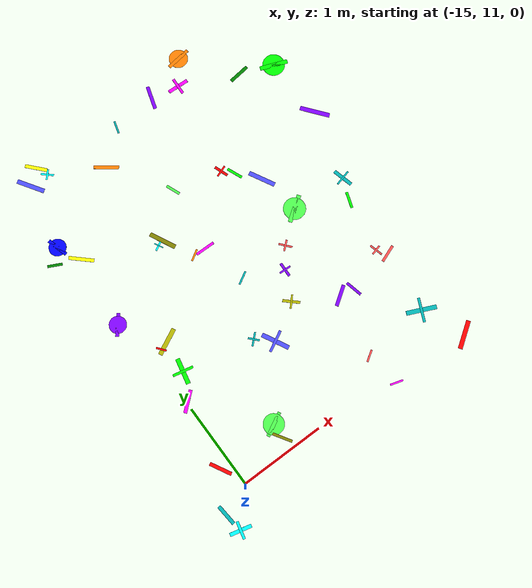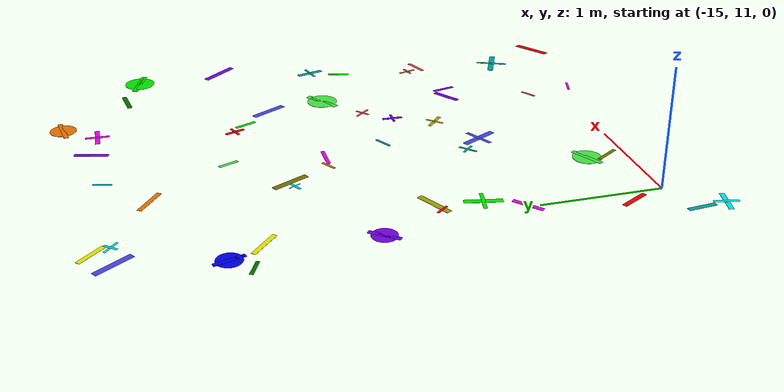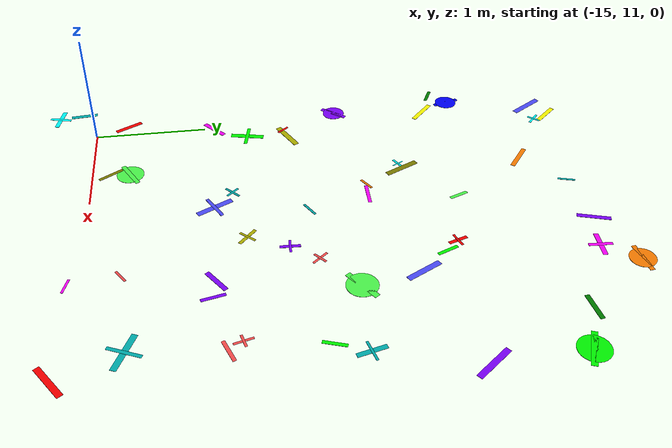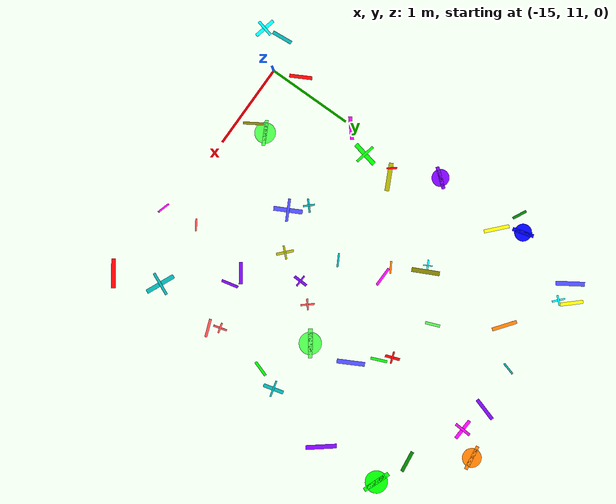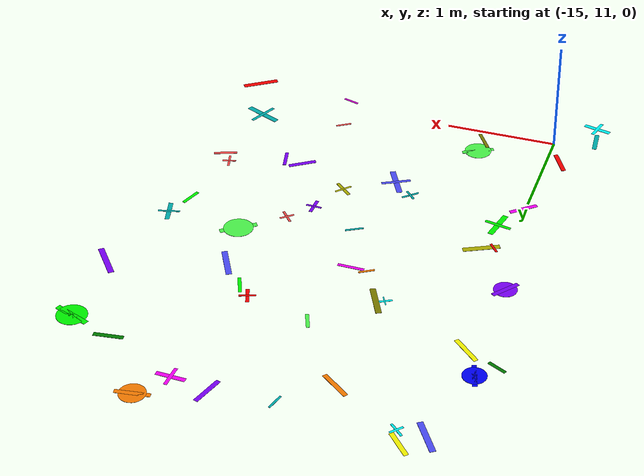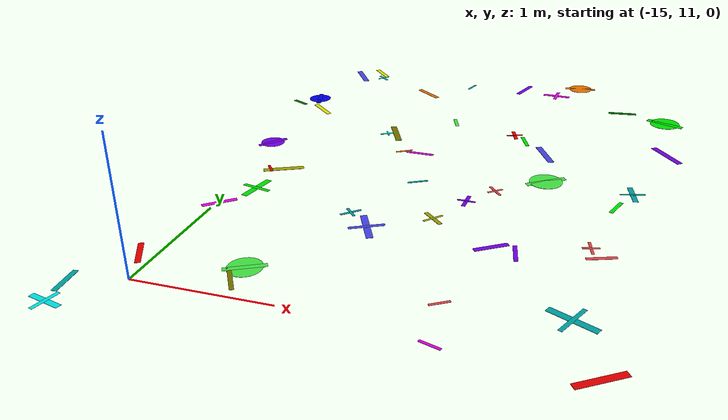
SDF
<sdf version="1.6">
 <world name="default">
  <model name="letter_J_78">
   <static>true</static>
   <pose>-15.36 10.86 0.010 0 0 4.804</pose>
   <link name="link">
    <visual name="visual">
     <geometry><box><size>0.24 0.04 0.002</size></box></geometry>
     <material>
      <ambient>0.0 0.7 0.7 1</ambient>
      <diffuse>0.0 0.7 0.7 1</diffuse>
      <specular>0.1 0.1 0.1 1</specular>
     </material>
    </visual>
   </link>
  </model>
  <model name="letter_L_79">
   <static>true</static>
   <pose>-15.33 10.64 0.009 0 0 6.050</pose>
   <link name="link">
    <visual name="visual">
     <geometry><box><size>0.25 0.04 0.002</size></box></geometry>
     <material>
      <ambient>0.0 1.0 1.0 1</ambient>
      <diffuse>0.0 1.0 1.0 1</diffuse>
      <specular>0.1 0.1 0.1 1</specular>
     </material>
    </visual>
    <visual name="visual2">
     <pose>0 0 0.001 0 0 1.57</pose>
     <geometry><box><size>0.20 0.03 0.001</size></box></geometry>
     <material><ambient>0.0 1.0 1.0 1</ambient><diffuse>0.0 1.0 1.0 1</diffuse></material>
    </visual>
   </link>
  </model>
  <model name="letter_K_80">
   <static>true</static>
   <pose>-15.12 11.29 0.006 0 0 5.213</pose>
   <link name="link">
    <visual name="visual">
     <geometry><box><size>0.26 0.04 0.002</size></box></geometry>
     <material>
      <ambient>1.0 0.0 0.0 1</ambient>
      <diffuse>1.0 0.0 0.0 1</diffuse>
      <specular>0.1 0.1 0.1 1</specular>
     </material>
    </visual>
   </link>
  </model>
  <model name="letter_H_81">
   <static>true</static>
   <pose>-14.83 12.39 0.005 0 0 4.503</pose>
   <link name="link">
    <visual name="visual">
     <geometry><box><size>0.30 0.05 0.002</size></box></geometry>
     <material>
      <ambient>0.0 1.0 0.0 1</ambient>
      <diffuse>0.0 1.0 0.0 1</diffuse>
      <specular>0.1 0.1 0.1 1</specular>
     </material>
    </visual>
    <visual name="visual2">
     <pose>0 0 0.001 0 0 1.57</pose>
     <geometry><box><size>0.24 0.03 0.001</size></box></geometry>
     <material><ambient>0.0 1.0 0.0 1</ambient><diffuse>0.0 1.0 0.0 1</diffuse></material>
    </visual>
   </link>
  </model>
  <model name="letter_W_82">
   <static>true</static>
   <pose>-14.98 12.09 0.005 0 0 3.850</pose>
   <link name="link">
    <visual name="visual">
     <geometry><box><size>0.26 0.04 0.002</size></box></geometry>
     <material>
      <ambient>1.0 0.0 1.0 1</ambient>
      <diffuse>1.0 0.0 1.0 1</diffuse>
      <specular>0.1 0.1 0.1 1</specular>
     </material>
    </visual>
   </link>
  </model>
  <model name="letter_Q_83">
   <static>true</static>
   <pose>-15.11 13.24 0.003 0 0 4.041</pose>
   <link name="link">
    <visual name="visual">
     <geometry><box><size>0.26 0.04 0.002</size></box></geometry>
     <material>
      <ambient>0.5 0.0 1.0 1</ambient>
      <diffuse>0.5 0.0 1.0 1</diffuse>
      <specular>0.1 0.1 0.1 1</specular>
     </material>
    </visual>
    <visual name="visual2">
     <geometry><cylinder><radius>0.10</radius><length>0.002</length></cylinder></geometry>
     <material><ambient>0.5 0.0 1.0 1</ambient><diffuse>0.5 0.0 1.0 1</diffuse></material>
    </visual>
   </link>
  </model>
  <model name="letter_X_84">
   <static>true</static>
   <pose>-14.88 12.73 0.011 0 0 5.380</pose>
   <link name="link">
    <visual name="visual">
     <geometry><box><size>0.12 0.02 0.002</size></box></geometry>
     <material>
      <ambient>1.0 0.0 0.0 1</ambient>
      <diffuse>1.0 0.0 0.0 1</diffuse>
      <specular>0.1 0.1 0.1 1</specular>
     </material>
    </visual>
   </link>
  </model>
  <model name="letter_V_85">
   <static>true</static>
   <pose>-14.78 12.76 0.007 0 0 3.602</pose>
   <link name="link">
    <visual name="visual">
     <geometry><box><size>0.32 0.05 0.002</size></box></geometry>
     <material>
      <ambient>0.7 0.7 0.0 1</ambient>
      <diffuse>0.7 0.7 0.0 1</diffuse>
      <specular>0.1 0.1 0.1 1</specular>
     </material>
    </visual>
   </link>
  </model>
  <model name="letter_M_86">
   <static>true</static>
   <pose>-15.01 14.09 0.009 0 0 5.541</pose>
   <link name="link">
    <visual name="visual">
     <geometry><box><size>0.29 0.04 0.002</size></box></geometry>
     <material>
      <ambient>1.0 1.0 0.0 1</ambient>
      <diffuse>1.0 1.0 0.0 1</diffuse>
      <specular>0.1 0.1 0.1 1</specular>
     </material>
    </visual>
   </link>
  </model>
  <model name="letter_O_87">
   <static>true</static>
   <pose>-15.15 14.36 0.007 0 0 1.856</pose>
   <link name="link">
    <visual name="visual">
     <geometry><box><size>0.25 0.04 0.002</size></box></geometry>
     <material>
      <ambient>0.0 0.0 1.0 1</ambient>
      <diffuse>0.0 0.0 1.0 1</diffuse>
      <specular>0.1 0.1 0.1 1</specular>
     </material>
    </visual>
    <visual name="visual2">
     <geometry><cylinder><radius>0.10</radius><length>0.002</length></cylinder></geometry>
     <material><ambient>0.0 0.0 1.0 1</ambient><diffuse>0.0 0.0 1.0 1</diffuse></material>
    </visual>
   </link>
  </model>
  <model name="letter_B_88">
   <static>true</static>
   <pose>-15.29 14.21 0.005 0 0 2.685</pose>
   <link name="link">
    <visual name="visual">
     <geometry><box><size>0.17 0.03 0.002</size></box></geometry>
     <material>
      <ambient>0.0 0.5 0.0 1</ambient>
      <diffuse>0.0 0.5 0.0 1</diffuse>
      <specular>0.1 0.1 0.1 1</specular>
     </material>
    </visual>
   </link>
  </model>
  <model name="letter_Y_89">
   <static>true</static>
   <pose>-14.99 15.13 0.004 0 0 2.151</pose>
   <link name="link">
    <visual name="visual">
     <geometry><box><size>0.33 0.05 0.002</size></box></geometry>
     <material>
      <ambient>0.3 0.3 1.0 1</ambient>
      <diffuse>0.3 0.3 1.0 1</diffuse>
      <specular>0.1 0.1 0.1 1</specular>
     </material>
    </visual>
   </link>
  </model>
  <model name="letter_S_90">
   <static>true</static>
   <pose>-14.82 15.27 0.006 0 0 2.311</pose>
   <link name="link">
    <visual name="visual">
     <geometry><box><size>0.26 0.04 0.002</size></box></geometry>
     <material>
      <ambient>1.0 1.0 0.0 1</ambient>
      <diffuse>1.0 1.0 0.0 1</diffuse>
      <specular>0.1 0.1 0.1 1</specular>
     </material>
    </visual>
   </link>
  </model>
  <model name="letter_I_91">
   <static>true</static>
   <pose>-14.76 15.13 0.007 0 0 5.548</pose>
   <link name="link">
    <visual name="visual">
     <geometry><box><size>0.15 0.02 0.002</size></box></geometry>
     <material>
      <ambient>0.0 1.0 1.0 1</ambient>
      <diffuse>0.0 1.0 1.0 1</diffuse>
      <specular>0.1 0.1 0.1 1</specular>
     </material>
    </visual>
    <visual name="visual2">
     <pose>0 0 0.001 0 0 1.57</pose>
     <geometry><box><size>0.12 0.02 0.001</size></box></geometry>
     <material><ambient>0.0 1.0 1.0 1</ambient><diffuse>0.0 1.0 1.0 1</diffuse></material>
    </visual>
   </link>
  </model>
  <model name="letter_O_156">
   <static>true</static>
   <pose>-14.37 11.33 0.005 0 0 3.629</pose>
   <link name="link">
    <visual name="visual">
     <geometry><box><size>0.29 0.04 0.002</size></box></geometry>
     <material>
      <ambient>0.3 1.0 0.3 1</ambient>
      <diffuse>0.3 1.0 0.3 1</diffuse>
      <specular>0.1 0.1 0.1 1</specular>
     </material>
    </visual>
    <visual name="visual2">
     <geometry><cylinder><radius>0.12</radius><length>0.002</length></cylinder></geometry>
     <material><ambient>0.3 1.0 0.3 1</ambient><diffuse>0.3 1.0 0.3 1</diffuse></material>
    </visual>
   </link>
  </model>
  <model name="letter_R_157">
   <static>true</static>
   <pose>-14.38 11.16 0.011 0 0 2.137</pose>
   <link name="link">
    <visual name="visual">
     <geometry><box><size>0.23 0.03 0.002</size></box></geometry>
     <material>
      <ambient>0.5 0.5 0.0 1</ambient>
      <diffuse>0.5 0.5 0.0 1</diffuse>
      <specular>0.1 0.1 0.1 1</specular>
     </material>
    </visual>
   </link>
  </model>
  <model name="letter_F_158">
   <static>true</static>
   <pose>-13.99 12.21 0.013 0 0 0.749</pose>
   <link name="link">
    <visual name="visual">
     <geometry><box><size>0.16 0.02 0.002</size></box></geometry>
     <material>
      <ambient>0.0 0.7 0.7 1</ambient>
      <diffuse>0.0 0.7 0.7 1</diffuse>
      <specular>0.1 0.1 0.1 1</specular>
     </material>
    </visual>
    <visual name="visual2">
     <pose>0 0 0.001 0 0 1.57</pose>
     <geometry><box><size>0.13 0.02 0.001</size></box></geometry>
     <material><ambient>0.0 0.7 0.7 1</ambient><diffuse>0.0 0.7 0.7 1</diffuse></material>
    </visual>
   </link>
  </model>
  <model name="letter_E_159">
   <static>true</static>
   <pose>-13.81 12.05 0.010 0 0 2.056</pose>
   <link name="link">
    <visual name="visual">
     <geometry><box><size>0.33 0.05 0.002</size></box></geometry>
     <material>
      <ambient>0.3 0.3 1.0 1</ambient>
      <diffuse>0.3 0.3 1.0 1</diffuse>
      <specular>0.1 0.1 0.1 1</specular>
     </material>
    </visual>
    <visual name="visual2">
     <pose>0 0 0.001 0 0 1.57</pose>
     <geometry><box><size>0.26 0.03 0.001</size></box></geometry>
     <material><ambient>0.3 0.3 1.0 1</ambient><diffuse>0.3 0.3 1.0 1</diffuse></material>
    </visual>
   </link>
  </model>
  <model name="letter_D_160">
   <static>true</static>
   <pose>-13.82 13.36 0.011 0 0 6.271</pose>
   <link name="link">
    <visual name="visual">
     <geometry><box><size>0.23 0.03 0.002</size></box></geometry>
     <material>
      <ambient>1.0 0.0 1.0 1</ambient>
      <diffuse>1.0 0.0 1.0 1</diffuse>
      <specular>0.1 0.1 0.1 1</specular>
     </material>
    </visual>
   </link>
  </model>
  <model name="letter_B_161">
   <static>true</static>
   <pose>-13.68 12.84 0.009 0 0 0.513</pose>
   <link name="link">
    <visual name="visual">
     <geometry><box><size>0.16 0.02 0.002</size></box></geometry>
     <material>
      <ambient>0.0 0.7 0.7 1</ambient>
      <diffuse>0.0 0.7 0.7 1</diffuse>
      <specular>0.1 0.1 0.1 1</specular>
     </material>
    </visual>
   </link>
  </model>
  <model name="letter_D_162">
   <static>true</static>
   <pose>-13.96 13.37 0.010 0 0 3.690</pose>
   <link name="link">
    <visual name="visual">
     <geometry><box><size>0.14 0.02 0.002</size></box></geometry>
     <material>
      <ambient>1.0 0.5 0.0 1</ambient>
      <diffuse>1.0 0.5 0.0 1</diffuse>
      <specular>0.1 0.1 0.1 1</specular>
     </material>
    </visual>
   </link>
  </model>
  <model name="letter_V_163">
   <static>true</static>
   <pose>-14.15 13.72 0.008 0 0 5.175</pose>
   <link name="link">
    <visual name="visual">
     <geometry><box><size>0.32 0.05 0.002</size></box></geometry>
     <material>
      <ambient>0.5 0.5 0.0 1</ambient>
      <diffuse>0.5 0.5 0.0 1</diffuse>
      <specular>0.1 0.1 0.1 1</specular>
     </material>
    </visual>
   </link>
  </model>
  <model name="letter_T_164">
   <static>true</static>
   <pose>-14.22 13.70 0.007 0 0 3.638</pose>
   <link name="link">
    <visual name="visual">
     <geometry><box><size>0.13 0.02 0.002</size></box></geometry>
     <material>
      <ambient>0.0 1.0 1.0 1</ambient>
      <diffuse>0.0 1.0 1.0 1</diffuse>
      <specular>0.1 0.1 0.1 1</specular>
     </material>
    </visual>
    <visual name="visual2">
     <pose>0 0 0.001 0 0 1.57</pose>
     <geometry><box><size>0.11 0.01 0.001</size></box></geometry>
     <material><ambient>0.0 1.0 1.0 1</ambient><diffuse>0.0 1.0 1.0 1</diffuse></material>
    </visual>
   </link>
  </model>
  <model name="letter_Z_165">
   <static>true</static>
   <pose>-13.71 14.13 0.005 0 0 1.953</pose>
   <link name="link">
    <visual name="visual">
     <geometry><box><size>0.17 0.03 0.002</size></box></geometry>
     <material>
      <ambient>0.3 1.0 0.3 1</ambient>
      <diffuse>0.3 1.0 0.3 1</diffuse>
      <specular>0.1 0.1 0.1 1</specular>
     </material>
    </visual>
   </link>
  </model>
  <model name="letter_P_166">
   <static>true</static>
   <pose>-14.17 14.80 0.007 0 0 5.635</pose>
   <link name="link">
    <visual name="visual">
     <geometry><box><size>0.29 0.04 0.002</size></box></geometry>
     <material>
      <ambient>1.0 0.5 0.0 1</ambient>
      <diffuse>1.0 0.5 0.0 1</diffuse>
      <specular>0.1 0.1 0.1 1</specular>
     </material>
    </visual>
   </link>
  </model>
  <model name="letter_P_167">
   <static>true</static>
   <pose>-13.80 15.12 0.006 0 0 1.297</pose>
   <link name="link">
    <visual name="visual">
     <geometry><box><size>0.15 0.02 0.002</size></box></geometry>
     <material>
      <ambient>0.0 0.7 0.7 1</ambient>
      <diffuse>0.0 0.7 0.7 1</diffuse>
      <specular>0.1 0.1 0.1 1</specular>
     </material>
    </visual>
   </link>
  </model>
  <model name="letter_K_230">
   <static>true</static>
   <pose>-13.01 10.89 0.011 0 0 5.993</pose>
   <link name="link">
    <visual name="visual">
     <geometry><box><size>0.15 0.02 0.002</size></box></geometry>
     <material>
      <ambient>1.0 0.0 1.0 1</ambient>
      <diffuse>1.0 0.0 1.0 1</diffuse>
      <specular>0.1 0.1 0.1 1</specular>
     </material>
    </visual>
   </link>
  </model>
  <model name="letter_M_231">
   <static>true</static>
   <pose>-13.07 11.30 0.007 0 0 3.717</pose>
   <link name="link">
    <visual name="visual">
     <geometry><box><size>0.14 0.02 0.002</size></box></geometry>
     <material>
      <ambient>1.0 0.3 0.3 1</ambient>
      <diffuse>1.0 0.3 0.3 1</diffuse>
      <specular>0.1 0.1 0.1 1</specular>
     </material>
    </visual>
   </link>
  </model>
  <model name="letter_S_232">
   <static>true</static>
   <pose>-12.92 12.03 0.006 0 0 0.599</pose>
   <link name="link">
    <visual name="visual">
     <geometry><box><size>0.25 0.04 0.002</size></box></geometry>
     <material>
      <ambient>0.5 0.0 1.0 1</ambient>
      <diffuse>0.5 0.0 1.0 1</diffuse>
      <specular>0.1 0.1 0.1 1</specular>
     </material>
    </visual>
   </link>
  </model>
  <model name="letter_V_233">
   <static>true</static>
   <pose>-12.75 12.00 0.004 0 0 1.797</pose>
   <link name="link">
    <visual name="visual">
     <geometry><box><size>0.20 0.03 0.002</size></box></geometry>
     <material>
      <ambient>0.5 0.0 1.0 1</ambient>
      <diffuse>0.5 0.0 1.0 1</diffuse>
      <specular>0.1 0.1 0.1 1</specular>
     </material>
    </visual>
   </link>
  </model>
  <model name="letter_F_234">
   <static>true</static>
   <pose>-13.40 12.30 0.009 0 0 5.539</pose>
   <link name="link">
    <visual name="visual">
     <geometry><box><size>0.20 0.03 0.002</size></box></geometry>
     <material>
      <ambient>0.7 0.7 0.0 1</ambient>
      <diffuse>0.7 0.7 0.0 1</diffuse>
      <specular>0.1 0.1 0.1 1</specular>
     </material>
    </visual>
    <visual name="visual2">
     <pose>0 0 0.001 0 0 1.57</pose>
     <geometry><box><size>0.16 0.02 0.001</size></box></geometry>
     <material><ambient>0.7 0.7 0.0 1</ambient><diffuse>0.7 0.7 0.0 1</diffuse></material>
    </visual>
   </link>
  </model>
  <model name="letter_I_235">
   <static>true</static>
   <pose>-13.24 12.63 0.009 0 0 1.536</pose>
   <link name="link">
    <visual name="visual">
     <geometry><box><size>0.17 0.03 0.002</size></box></geometry>
     <material>
      <ambient>0.5 0.0 1.0 1</ambient>
      <diffuse>0.5 0.0 1.0 1</diffuse>
      <specular>0.1 0.1 0.1 1</specular>
     </material>
    </visual>
    <visual name="visual2">
     <pose>0 0 0.001 0 0 1.57</pose>
     <geometry><box><size>0.14 0.02 0.001</size></box></geometry>
     <material><ambient>0.5 0.0 1.0 1</ambient><diffuse>0.5 0.0 1.0 1</diffuse></material>
    </visual>
   </link>
  </model>
  <model name="letter_C_236">
   <static>true</static>
   <pose>-12.73 13.13 0.008 0 0 3.757</pose>
   <link name="link">
    <visual name="visual">
     <geometry><box><size>0.33 0.05 0.002</size></box></geometry>
     <material>
      <ambient>0.3 1.0 0.3 1</ambient>
      <diffuse>0.3 1.0 0.3 1</diffuse>
      <specular>0.1 0.1 0.1 1</specular>
     </material>
    </visual>
    <visual name="visual2">
     <geometry><cylinder><radius>0.13</radius><length>0.002</length></cylinder></geometry>
     <material><ambient>0.3 1.0 0.3 1</ambient><diffuse>0.3 1.0 0.3 1</diffuse></material>
    </visual>
   </link>
  </model>
  <model name="letter_L_237">
   <static>true</static>
   <pose>-13.07 12.85 0.011 0 0 5.417</pose>
   <link name="link">
    <visual name="visual">
     <geometry><box><size>0.16 0.02 0.002</size></box></geometry>
     <material>
      <ambient>1.0 0.3 0.3 1</ambient>
      <diffuse>1.0 0.3 0.3 1</diffuse>
      <specular>0.1 0.1 0.1 1</specular>
     </material>
    </visual>
    <visual name="visual2">
     <pose>0 0 0.001 0 0 1.57</pose>
     <geometry><box><size>0.13 0.02 0.001</size></box></geometry>
     <material><ambient>1.0 0.3 0.3 1</ambient><diffuse>1.0 0.3 0.3 1</diffuse></material>
    </visual>
   </link>
  </model>
  <model name="letter_H_238">
   <static>true</static>
   <pose>-13.14 13.98 0.007 0 0 1.916</pose>
   <link name="link">
    <visual name="visual">
     <geometry><box><size>0.17 0.03 0.002</size></box></geometry>
     <material>
      <ambient>1.0 0.0 0.0 1</ambient>
      <diffuse>1.0 0.0 0.0 1</diffuse>
      <specular>0.1 0.1 0.1 1</specular>
     </material>
    </visual>
    <visual name="visual2">
     <pose>0 0 0.001 0 0 1.57</pose>
     <geometry><box><size>0.14 0.02 0.001</size></box></geometry>
     <material><ambient>1.0 0.0 0.0 1</ambient><diffuse>1.0 0.0 0.0 1</diffuse></material>
    </visual>
   </link>
  </model>
  <model name="letter_X_239">
   <static>true</static>
   <pose>-13.03 13.87 0.008 0 0 5.110</pose>
   <link name="link">
    <visual name="visual">
     <geometry><box><size>0.19 0.03 0.002</size></box></geometry>
     <material>
      <ambient>0.0 1.0 0.0 1</ambient>
      <diffuse>0.0 1.0 0.0 1</diffuse>
      <specular>0.1 0.1 0.1 1</specular>
     </material>
    </visual>
   </link>
  </model>
  <model name="letter_X_240">
   <static>true</static>
   <pose>-12.82 13.63 0.013 0 0 5.207</pose>
   <link name="link">
    <visual name="visual">
     <geometry><box><size>0.32 0.05 0.002</size></box></geometry>
     <material>
      <ambient>0.3 0.3 1.0 1</ambient>
      <diffuse>0.3 0.3 1.0 1</diffuse>
      <specular>0.1 0.1 0.1 1</specular>
     </material>
    </visual>
   </link>
  </model>
  <model name="letter_O_241">
   <static>true</static>
   <pose>-12.74 15.37 0.009 0 0 0.138</pose>
   <link name="link">
    <visual name="visual">
     <geometry><box><size>0.29 0.04 0.002</size></box></geometry>
     <material>
      <ambient>1.0 0.5 0.0 1</ambient>
      <diffuse>1.0 0.5 0.0 1</diffuse>
      <specular>0.1 0.1 0.1 1</specular>
     </material>
    </visual>
    <visual name="visual2">
     <geometry><cylinder><radius>0.11</radius><length>0.002</length></cylinder></geometry>
     <material><ambient>1.0 0.5 0.0 1</ambient><diffuse>1.0 0.5 0.0 1</diffuse></material>
    </visual>
   </link>
  </model>
  <model name="letter_W_242">
   <static>true</static>
   <pose>-13.27 15.17 0.011 0 0 1.272</pose>
   <link name="link">
    <visual name="visual">
     <geometry><box><size>0.28 0.04 0.002</size></box></geometry>
     <material>
      <ambient>0.5 0.0 1.0 1</ambient>
      <diffuse>0.5 0.0 1.0 1</diffuse>
      <specular>0.1 0.1 0.1 1</specular>
     </material>
    </visual>
   </link>
  </model>
  <model name="letter_E_243">
   <static>true</static>
   <pose>-12.94 15.10 0.007 0 0 6.239</pose>
   <link name="link">
    <visual name="visual">
     <geometry><box><size>0.25 0.04 0.002</size></box></geometry>
     <material>
      <ambient>1.0 0.0 1.0 1</ambient>
      <diffuse>1.0 0.0 1.0 1</diffuse>
      <specular>0.1 0.1 0.1 1</specular>
     </material>
    </visual>
    <visual name="visual2">
     <pose>0 0 0.001 0 0 1.57</pose>
     <geometry><box><size>0.20 0.03 0.001</size></box></geometry>
     <material><ambient>1.0 0.0 1.0 1</ambient><diffuse>1.0 0.0 1.0 1</diffuse></material>
    </visual>
   </link>
  </model>
  <model name="letter_H_306">
   <static>true</static>
   <pose>-12.29 11.36 0.004 0 0 5.863</pose>
   <link name="link">
    <visual name="visual">
     <geometry><box><size>0.35 0.05 0.002</size></box></geometry>
     <material>
      <ambient>0.0 0.7 0.7 1</ambient>
      <diffuse>0.0 0.7 0.7 1</diffuse>
      <specular>0.1 0.1 0.1 1</specular>
     </material>
    </visual>
    <visual name="visual2">
     <pose>0 0 0.001 0 0 1.57</pose>
     <geometry><box><size>0.28 0.03 0.001</size></box></geometry>
     <material><ambient>0.0 0.7 0.7 1</ambient><diffuse>0.0 0.7 0.7 1</diffuse></material>
    </visual>
   </link>
  </model>
  <model name="letter_P_307">
   <static>true</static>
   <pose>-12.08 10.86 0.013 0 0 3.751</pose>
   <link name="link">
    <visual name="visual">
     <geometry><box><size>0.33 0.05 0.002</size></box></geometry>
     <material>
      <ambient>1.0 0.0 0.0 1</ambient>
      <diffuse>1.0 0.0 0.0 1</diffuse>
      <specular>0.1 0.1 0.1 1</specular>
     </material>
    </visual>
   </link>
  </model>
  <model name="letter_W_309">
   <static>true</static>
   <pose>-12.20 12.09 0.011 0 0 3.505</pose>
   <link name="link">
    <visual name="visual">
     <geometry><box><size>0.21 0.03 0.002</size></box></geometry>
     <material>
      <ambient>1.0 0.3 0.3 1</ambient>
      <diffuse>1.0 0.3 0.3 1</diffuse>
      <specular>0.1 0.1 0.1 1</specular>
     </material>
    </visual>
   </link>
  </model>
  <model name="letter_I_310">
   <static>true</static>
   <pose>-12.28 12.20 0.011 0 0 4.980</pose>
   <link name="link">
    <visual name="visual">
     <geometry><box><size>0.16 0.02 0.002</size></box></geometry>
     <material>
      <ambient>1.0 0.3 0.3 1</ambient>
      <diffuse>1.0 0.3 0.3 1</diffuse>
      <specular>0.1 0.1 0.1 1</specular>
     </material>
    </visual>
    <visual name="visual2">
     <pose>0 0 0.001 0 0 1.57</pose>
     <geometry><box><size>0.12 0.02 0.001</size></box></geometry>
     <material><ambient>1.0 0.3 0.3 1</ambient><diffuse>1.0 0.3 0.3 1</diffuse></material>
    </visual>
   </link>
  </model>
  <model name="letter_L_311">
   <static>true</static>
   <pose>-12.07 13.09 0.009 0 0 1.824</pose>
   <link name="link">
    <visual name="visual">
     <geometry><box><size>0.24 0.04 0.002</size></box></geometry>
     <material>
      <ambient>0.0 0.7 0.7 1</ambient>
      <diffuse>0.0 0.7 0.7 1</diffuse>
      <specular>0.1 0.1 0.1 1</specular>
     </material>
    </visual>
    <visual name="visual2">
     <pose>0 0 0.001 0 0 1.57</pose>
     <geometry><box><size>0.19 0.02 0.001</size></box></geometry>
     <material><ambient>0.0 0.7 0.7 1</ambient><diffuse>0.0 0.7 0.7 1</diffuse></material>
    </visual>
   </link>
  </model>
  <model name="letter_M_312">
   <static>true</static>
   <pose>-12.17 12.84 0.010 0 0 4.387</pose>
   <link name="link">
    <visual name="visual">
     <geometry><box><size>0.19 0.03 0.002</size></box></geometry>
     <material>
      <ambient>0.0 1.0 0.0 1</ambient>
      <diffuse>0.0 1.0 0.0 1</diffuse>
      <specular>0.1 0.1 0.1 1</specular>
     </material>
    </visual>
   </link>
  </model>
  <model name="letter_Y_313">
   <static>true</static>
   <pose>-11.85 13.91 0.008 0 0 2.245</pose>
   <link name="link">
    <visual name="visual">
     <geometry><box><size>0.35 0.05 0.002</size></box></geometry>
     <material>
      <ambient>0.5 0.0 1.0 1</ambient>
      <diffuse>0.5 0.0 1.0 1</diffuse>
      <specular>0.1 0.1 0.1 1</specular>
     </material>
    </visual>
   </link>
  </model>
  <model name="letter_G_315">
   <static>true</static>
   <pose>-11.89 14.65 0.004 0 0 5.921</pose>
   <link name="link">
    <visual name="visual">
     <geometry><box><size>0.33 0.05 0.002</size></box></geometry>
     <material>
      <ambient>0.0 1.0 0.0 1</ambient>
      <diffuse>0.0 1.0 0.0 1</diffuse>
      <specular>0.1 0.1 0.1 1</specular>
     </material>
    </visual>
    <visual name="visual2">
     <geometry><cylinder><radius>0.13</radius><length>0.002</length></cylinder></geometry>
     <material><ambient>0.0 1.0 0.0 1</ambient><diffuse>0.0 1.0 0.0 1</diffuse></material>
    </visual>
   </link>
  </model>
  <model name="letter_R_316">
   <static>true</static>
   <pose>-12.28 14.80 0.005 0 0 3.265</pose>
   <link name="link">
    <visual name="visual">
     <geometry><box><size>0.25 0.04 0.002</size></box></geometry>
     <material>
      <ambient>0.0 0.5 0.0 1</ambient>
      <diffuse>0.0 0.5 0.0 1</diffuse>
      <specular>0.1 0.1 0.1 1</specular>
     </material>
    </visual>
   </link>
  </model>
 </world>
</sdf>
